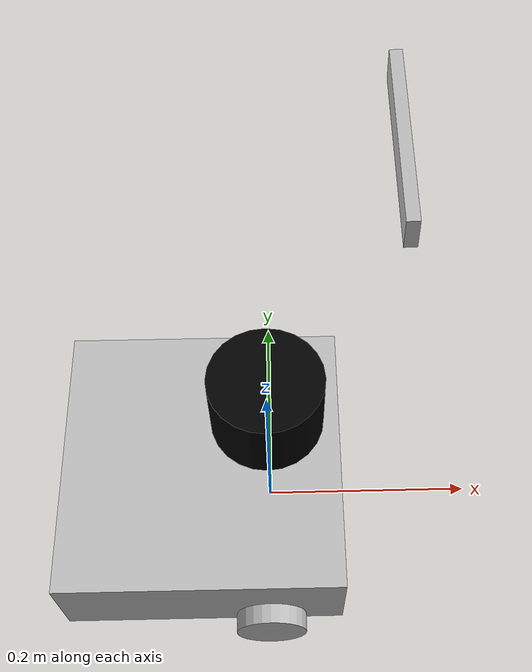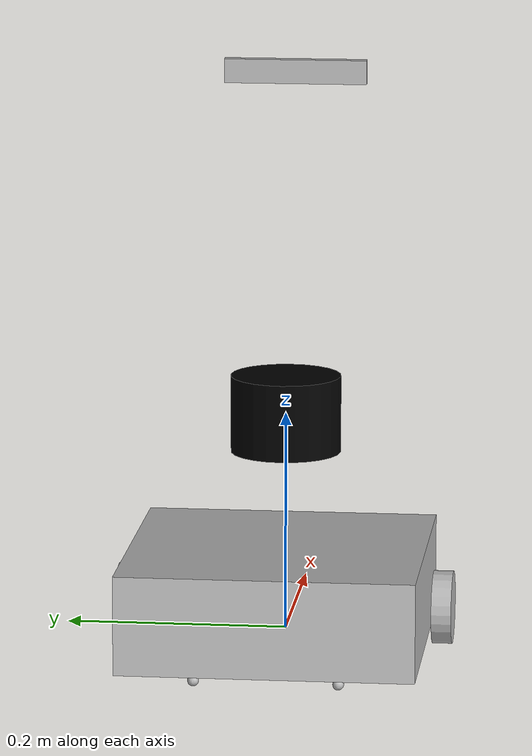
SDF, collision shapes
<?xml version="1.0"?>
<sdf version="1.5">
  <model name="turtlebot3_waffle">
    <pose>0.0 0.0 0.0 0.0 0.0 0.0</pose>

    <link name="base_footprint" />

    <link name="base_link">

      <inertial>
        <pose>-0.064 0 0.048 0 0 0</pose>
        <inertia>
          <ixx>0.001</ixx>
          <ixy>0.000</ixy>
          <ixz>0.000</ixz>
          <iyy>0.001</iyy>
          <iyz>0.000</iyz>
          <izz>0.001</izz>
        </inertia>
        <mass>1.0</mass>
      </inertial>

      <collision name="base_collision">
        <pose>-0.064 0 0.048 0 0 0</pose>
        <geometry>
          <box>
            <size>0.265 0.265 0.089</size>
          </box>
        </geometry>
      </collision>

      <visual name="base_visual">
        <pose>-0.064 0 0 0 0 0</pose>
        <geometry>
          <mesh>
            <uri>model://turtlebot3_waffle/meshes/waffle_base.dae</uri>
            <scale>0.001 0.001 0.001</scale>
          </mesh>
        </geometry>
      </visual>
    </link>

    <link name="imu_link">
      <sensor name="tb3_imu" type="imu">
        <always_on>true</always_on>
        <update_rate>200</update_rate>
        <imu>
          <angular_velocity>
            <x>
              <noise type="gaussian">
                <mean>0.0</mean>
                <stddev>2e-4</stddev>
              </noise>
            </x>
            <y>
              <noise type="gaussian">
                <mean>0.0</mean>
                <stddev>2e-4</stddev>
              </noise>
            </y>
            <z>
              <noise type="gaussian">
                <mean>0.0</mean>
                <stddev>2e-4</stddev>
              </noise>
            </z>
          </angular_velocity>
          <linear_acceleration>
            <x>
              <noise type="gaussian">
                <mean>0.0</mean>
                <stddev>1.7e-2</stddev>
              </noise>
            </x>
            <y>
              <noise type="gaussian">
                <mean>0.0</mean>
                <stddev>1.7e-2</stddev>
              </noise>
            </y>
            <z>
              <noise type="gaussian">
                <mean>0.0</mean>
                <stddev>1.7e-2</stddev>
              </noise>
            </z>
          </linear_acceleration>
        </imu>
        <plugin name="turtlebot3_imu" filename="libgazebo_ros_imu_sensor.so">
          <ros>
            <argument>~/out:=imu</argument>
          </ros>
        </plugin>
      </sensor>
    </link>

    <link name="base_scan">
      <pose>0 0 0.20 0 0 0</pose>
      <inertial>
        <pose>0 0 0.0 0 0 0</pose>
        <mass>0.30</mass>
        <inertia>
          <ixx>0.00031</ixx>
          <ixy>0.0</ixy>
          <ixz>0.0</ixz>
          <iyy>0.00031</iyy>
          <iyz>0.0</iyz>
          <izz>0.000375</izz>
        </inertia>
      </inertial>

      <collision name="lidar_sensor_collision">
        <pose>0 0 0 0 0 0</pose>
        <geometry>
          <cylinder>
            <radius>0.05</radius>
            <length>0.07</length>
          </cylinder>
        </geometry>
      </collision>

      <visual name="lidar_sensor_visual">
        <pose>0 0 0 0 0 0</pose>
        <geometry>
          <cylinder>
            <radius>0.05</radius>
            <length>0.07</length>
          </cylinder>
        </geometry>
        <material>
          <ambient>0 0 0 1</ambient>
          <diffuse>0 0 0 1</diffuse>
        </material>
      </visual>

    </link>

    <link name="wheel_left_link">

      <inertial>
        <pose>0.0 0.144 0.023 -1.57 0 0</pose>
        <inertia>
          <ixx>0.001</ixx>
          <ixy>0.000</ixy>
          <ixz>0.000</ixz>
          <iyy>0.001</iyy>
          <iyz>0.000</iyz>
          <izz>0.001</izz>
        </inertia>
        <mass>0.1</mass>
      </inertial>

      <collision name="wheel_left_collision">
        <pose>0.0 0.144 0.023 -1.57 0 0</pose>
        <geometry>
          <cylinder>
            <radius>0.033</radius>
            <length>0.018</length>
          </cylinder>
        </geometry>
        <surface>
          <!-- This friction pamareter don't contain reliable data!! -->
          <friction>
            <ode>
              <mu>100000.0</mu>
              <mu2>100000.0</mu2>
              <fdir1>0 0 0</fdir1>
              <slip1>0.0</slip1>
              <slip2>0.0</slip2>
            </ode>
          </friction>
          <contact>
            <ode>
              <soft_cfm>0</soft_cfm>
              <soft_erp>0.2</soft_erp>
              <kp>1e+5</kp>
              <kd>1</kd>
              <max_vel>0.01</max_vel>
              <min_depth>0.001</min_depth>
            </ode>
          </contact>
        </surface>
      </collision>

      <visual name="wheel_left_visual">
        <pose>0.0 0.144 0.023 0 0 0</pose>
        <geometry>
          <mesh>
            <uri>model://turtlebot3_waffle/meshes/left_tire.dae</uri>
            <scale>0.001 0.001 0.001</scale>
          </mesh>
        </geometry>
      </visual>
    </link>

    <link name="wheel_right_link">

      <inertial>
        <pose>0.0 -0.144 0.023 -1.57 0 0</pose>
        <inertia>
          <ixx>0.001</ixx>
          <ixy>0.000</ixy>
          <ixz>0.000</ixz>
          <iyy>0.001</iyy>
          <iyz>0.000</iyz>
          <izz>0.001</izz>
        </inertia>
        <mass>0.1</mass>
      </inertial>

      <collision name="wheel_right_collision">
        <pose>0.0 -0.144 0.023 -1.57 0 0</pose>
        <geometry>
          <cylinder>
            <radius>0.033</radius>
            <length>0.018</length>
          </cylinder>
        </geometry>
        <surface>
          <!-- This friction pamareter don't contain reliable data!! -->
          <friction>
            <ode>
              <mu>100000.0</mu>
              <mu2>100000.0</mu2>
              <fdir1>0 0 0</fdir1>
              <slip1>0.0</slip1>
              <slip2>0.0</slip2>
            </ode>
          </friction>
          <contact>
            <ode>
              <soft_cfm>0</soft_cfm>
              <soft_erp>0.2</soft_erp>
              <kp>1e+5</kp>
              <kd>1</kd>
              <max_vel>0.01</max_vel>
              <min_depth>0.001</min_depth>
            </ode>
          </contact>
        </surface>
      </collision>

      <visual name="wheel_right_visual">
        <pose>0.0 -0.144 0.023 0 0 0</pose>
        <geometry>
          <mesh>
            <uri>model://turtlebot3_waffle/meshes/right_tire.dae</uri>
            <scale>0.001 0.001 0.001</scale>
          </mesh>
        </geometry>
      </visual>
    </link>

    <link name='caster_back_right_link'>
      <pose>-0.177 -0.064 -0.004 0 0 0</pose>
      <inertial>
        <mass>0.001</mass>
        <inertia>
          <ixx>0.00001</ixx>
          <ixy>0.000</ixy>
          <ixz>0.000</ixz>
          <iyy>0.00001</iyy>
          <iyz>0.000</iyz>
          <izz>0.00001</izz>
        </inertia>
      </inertial>
      <collision name='collision'>
        <geometry>
          <sphere>
            <radius>0.005000</radius>
          </sphere>
        </geometry>
        <surface>
          <contact>
            <ode>
              <soft_cfm>0</soft_cfm>
              <soft_erp>0.2</soft_erp>
              <kp>1e+5</kp>
              <kd>1</kd>
              <max_vel>0.01</max_vel>
              <min_depth>0.001</min_depth>
            </ode>
          </contact>
        </surface>
      </collision>
    </link>

    <link name='caster_back_left_link'>
      <pose>-0.177 0.064 -0.004 0 0 0</pose>
      <inertial>
        <mass>0.001</mass>
        <inertia>
          <ixx>0.00001</ixx>
          <ixy>0.000</ixy>
          <ixz>0.000</ixz>
          <iyy>0.00001</iyy>
          <iyz>0.000</iyz>
          <izz>0.00001</izz>
        </inertia>
      </inertial>
      <collision name='collision'>
        <geometry>
          <sphere>
            <radius>0.005000</radius>
          </sphere>
        </geometry>
        <surface>
          <contact>
            <ode>
              <soft_cfm>0</soft_cfm>
              <soft_erp>0.2</soft_erp>
              <kp>1e+5</kp>
              <kd>1</kd>
              <max_vel>0.01</max_vel>
              <min_depth>0.001</min_depth>
            </ode>
          </contact>
        </surface>
      </collision>
    </link>

    <link name="realsense_link">
      <pose>0.085 0.0 0.5 0 -0.034906585 0</pose>

      <inertial>
        <pose>0 0 0 0 0 0</pose>
        <mass>0.035</mass>
        <inertia>
          <ixx>0.00002</ixx>
          <ixy>0.0</ixy>
          <ixz>0.0</ixz>
          <iyy>0.00008</iyy>
          <iyz>0.0</iyz>
          <izz>0.00008</izz>
        </inertia>
      </inertial>

      <collision name="collision">
        <pose>0 0 0 0 0 0</pose>
        <geometry>
          <box>
            <size>0.008 0.130 0.022</size>
          </box>
        </geometry>
      </collision>

      <visual name="visual">
        <pose>0 0 0 0 0 0</pose>
        <geometry>
          <box>
            <size>0.008 0.130 0.022</size>
          </box>
        </geometry>
      </visual>

      <sensor name="intel_realsense_r200_depth" type="depth">
        <always_on>true</always_on>
        <visualize>true</visualize>
        <update_rate>5</update_rate>
        <pose>0 0 0 0 0 0</pose>
        <camera name="realsense_depth_camera">
          <horizontal_fov>1.02974</horizontal_fov>
          <image>
            <width>640</width>
            <height>480</height>
            <format>B8G8R8</format>
          </image>
          <depth_camera />
          <clip>
            <near>0.02</near>
            <far>300.0</far>
          </clip>
          <noise>
            <type>gaussian</type>
            <mean>0.0</mean>
            <stddev>0.007</stddev>
          </noise>
        </camera>
        <plugin name="intel_realsense_r200_depth_driver" filename="libgazebo_ros_camera.so">
          <camera_name>intel_realsense_r200_depth</camera_name>
          <frame_name>realsense_depth_frame</frame_name>
          <min_depth>0.001</min_depth>
        </plugin>
      </sensor>

      <sensor name="intel_realsense_r200_rgb" type="camera">
        <always_on>true</always_on>
        <visualize>true</visualize>
        <update_rate>5</update_rate>
        <pose>0 0 0 0 0 0</pose>
        <camera name="realsense_rgb_camera">
          <horizontal_fov>1.02974</horizontal_fov>
          <image>
            <width>640</width>
            <height>480</height>
            <format>B8G8R8</format>
          </image>
          <clip>
            <near>0.02</near>
            <far>300.0</far>
          </clip>
          <noise>
            <type>gaussian</type>
            <mean>0.0</mean>
            <stddev>0.007</stddev>
          </noise>
        </camera>
        <plugin name="intel_realsense_r200_rgb_driver" filename="libgazebo_ros_camera.so">
          <camera_name>intel_realsense_r200_rgb</camera_name>
          <frame_name>realsense_rgb_frame</frame_name>
        </plugin>
      </sensor>
    </link>

    <joint name="camera_joint" type="fixed">
      <parent>base_link</parent>
      <child>realsense_link</child>
    </joint>

    <joint name="base_joint" type="fixed">
      <parent>base_footprint</parent>
      <child>base_link</child>
      <pose>0.0 0.0 0.010 0 0 0</pose>
    </joint>

    <joint name="wheel_left_joint" type="revolute">
      <parent>base_link</parent>
      <child>wheel_left_link</child>
      <pose>0.0 0.144 0.023 -1.57 0 0</pose>
      <axis>
        <xyz>0 0 1</xyz>
      </axis>
    </joint>

    <joint name="wheel_right_joint" type="revolute">
      <parent>base_link</parent>
      <child>wheel_right_link</child>
      <pose>0.0 -0.144 0.023 -1.57 0 0</pose>
      <axis>
        <xyz>0 0 1</xyz>
      </axis>
    </joint>

    <joint name='caster_back_right_joint' type='ball'>
      <parent>base_link</parent>
      <child>caster_back_right_link</child>
    </joint>

    <joint name='caster_back_left_joint' type='ball'>
      <parent>base_link</parent>
      <child>caster_back_left_link</child>
    </joint>

    <joint name="lidar_joint" type="fixed">
      <parent>base_link</parent>
      <child>base_scan</child>
      <pose>-0.064 0 0.159 0 0 0</pose>
    </joint>

    <plugin name="turtlebot3_diff_drive" filename="libgazebo_ros_diff_drive.so">

      <ros>
      </ros>

      <update_rate>30</update_rate>

      <!-- wheels -->
      <left_joint>wheel_left_joint</left_joint>
      <right_joint>wheel_right_joint</right_joint>

      <!-- kinematics -->
      <wheel_separation>0.287</wheel_separation>
      <wheel_diameter>0.066</wheel_diameter>

      <!-- limits -->
      <max_wheel_torque>20</max_wheel_torque>
      <max_wheel_acceleration>1.0</max_wheel_acceleration>

      <command_topic>cmd_vel</command_topic>

      <!-- output -->
      <publish_odom>true</publish_odom>
      <publish_odom_tf>true</publish_odom_tf>
      <publish_wheel_tf>false</publish_wheel_tf>

      <odometry_topic>odom</odometry_topic>
      <odometry_frame>odom</odometry_frame>
      <robot_base_frame>base_footprint</robot_base_frame>

    </plugin>

    <plugin name="turtlebot3_joint_state" filename="libgazebo_ros_joint_state_publisher.so">
      <ros>
        <argument>~/out:=joint_states</argument>
      </ros>
      <update_rate>30</update_rate>
      <joint_name>wheel_left_joint</joint_name>
      <joint_name>wheel_right_joint</joint_name>
    </plugin>

  </model>
</sdf>
